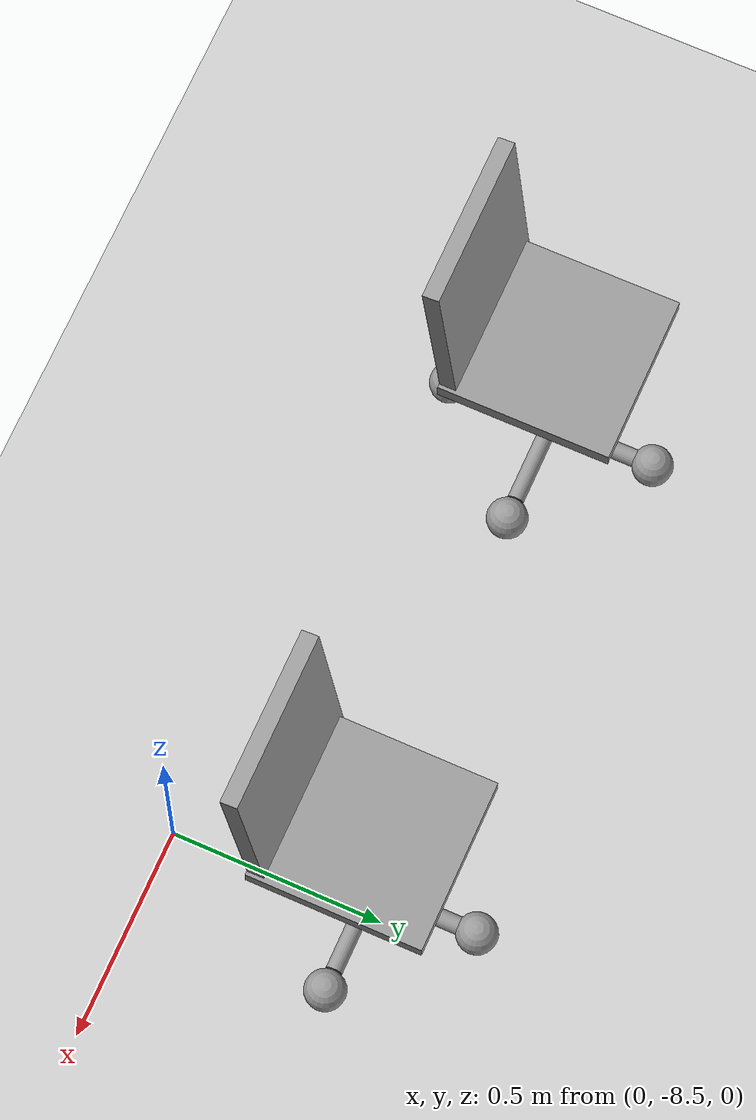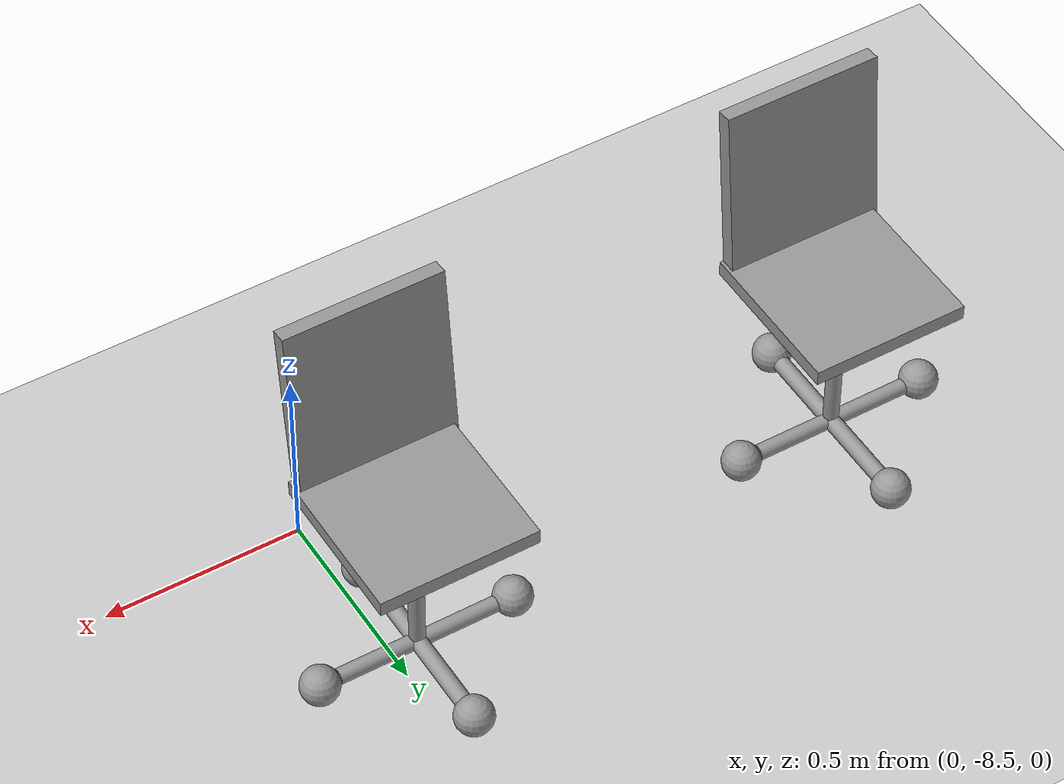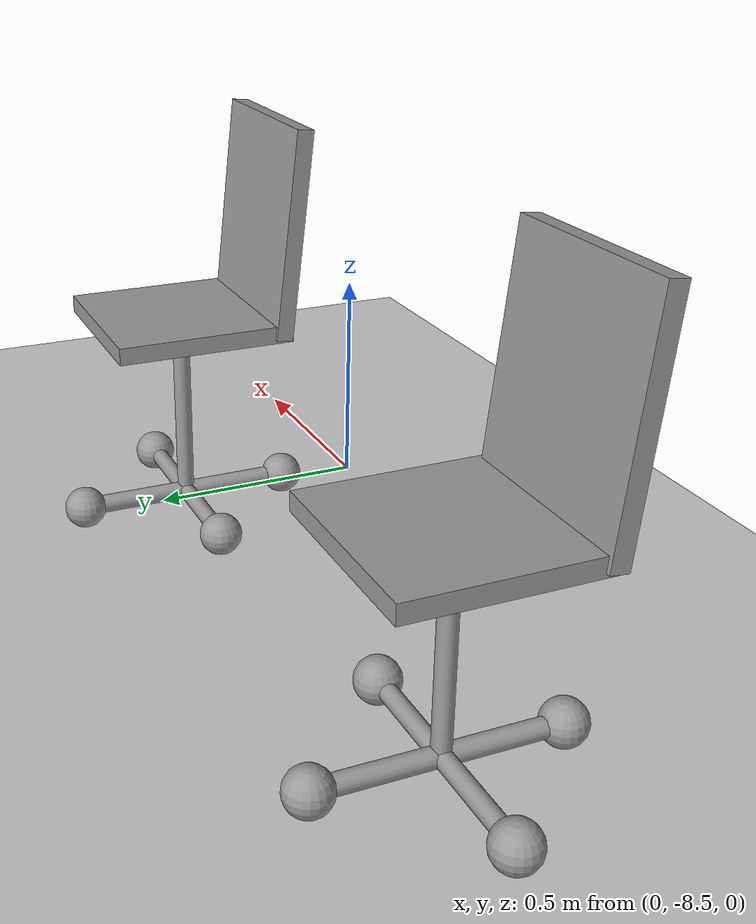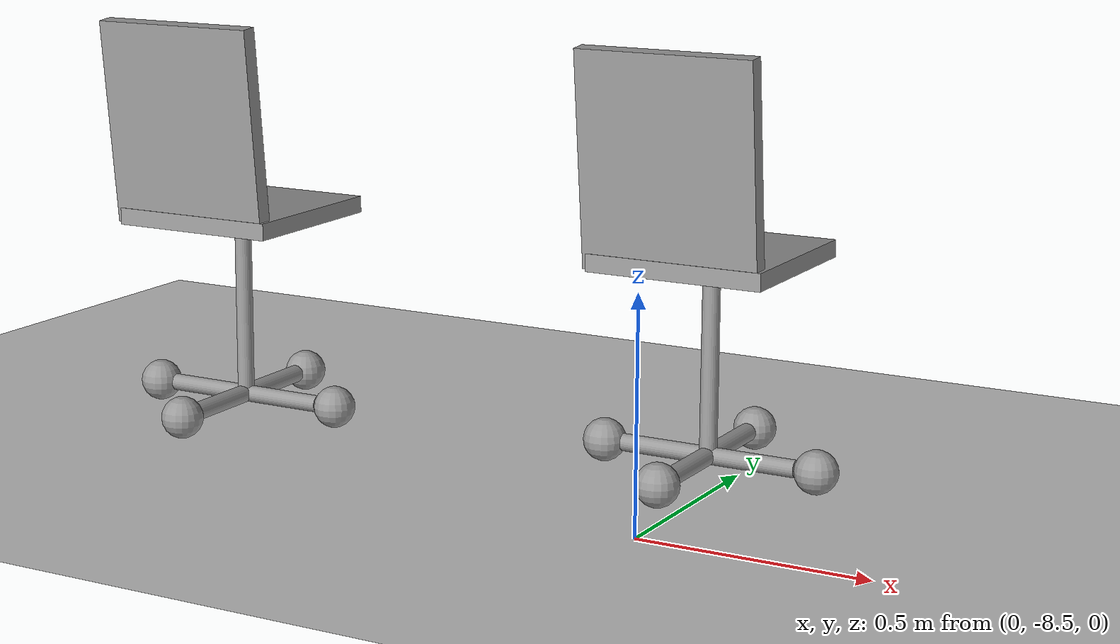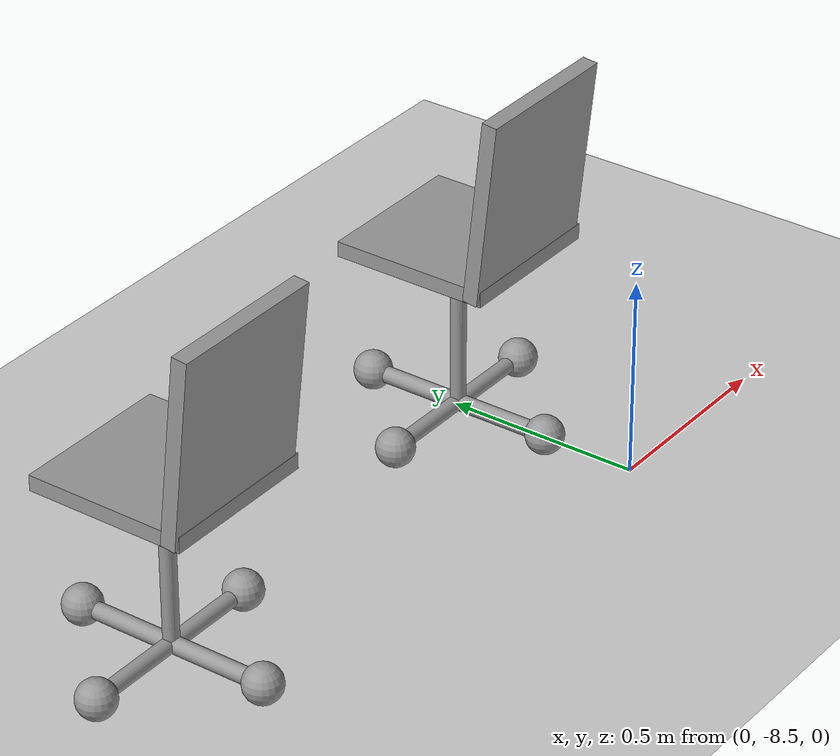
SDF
<sdf version="1.6">
 <world name="default">
  <model name="ground_plane">
   <static>1</static>
   <link name="link">
    <collision name="collision">
     <geometry><plane><normal>0 0 1</normal><size>100 100</size></plane></geometry>
     <surface><friction><ode><mu>100</mu><mu2>50</mu2></ode></friction></surface>
    </collision>
    <visual name="visual">
     <cast_shadows>0</cast_shadows>
     <geometry><plane><normal>0 0 1</normal><size>100 100</size></plane></geometry>
     <material>
      <script><uri>file://media/materials/scripts/gazebo.material</uri><name>Gazebo/Grey</name></script>
     </material>
    </visual>
   </link>
  </model>
  <model name="Sedia_4">
   <link name="link">
    <inertial>
     <mass>1</mass>
     <inertia><ixx>0.1</ixx><ixy>0</ixy><ixz>0</ixz><iyy>0.1</iyy><iyz>0</iyz><izz>0.1</izz></inertia>
     <pose>0 -0.05 0 0 -0 0</pose>
    </inertial>
    <pose>0 -0.05 0.04 0 -0 0</pose>
    <visual name="visual">
     <geometry><sphere><radius>0.0479725</radius></sphere></geometry>
     <material>
      <script><name>Gazebo/Grey</name><uri>file://media/materials/scripts/gazebo.material</uri></script>
      <shader type="vertex"><normal_map>__default__</normal_map></shader>
      <ambient>0.3 0.3 0.3 1</ambient>
      <diffuse>0.7 0.7 0.7 1</diffuse>
      <specular>0.01 0.01 0.01 1</specular>
      <emissive>0 0 0 1</emissive>
     </material>
    </visual>
    <collision name="collision">
     <geometry><sphere><radius>0.047973</radius></sphere></geometry>
     <surface>
      <friction>
       <ode><mu>1</mu><mu2>1</mu2><fdir1>0 0 0</fdir1><slip1>0</slip1><slip2>0</slip2></ode>
       <torsional>
        <coefficient>1</coefficient>
        <patch_radius>0</patch_radius>
        <surface_radius>0</surface_radius>
        <use_patch_radius>1</use_patch_radius>
        <ode><slip>0</slip></ode>
       </torsional>
      </friction>
      <bounce><restitution_coefficient>0</restitution_coefficient><threshold>1e+06</threshold></bounce>
      <contact>
       <collide_without_contact>0</collide_without_contact>
       <collide_without_contact_bitmask>1</collide_without_contact_bitmask>
       <collide_bitmask>1</collide_bitmask>
       <ode>
        <soft_cfm>0</soft_cfm>
        <soft_erp>0.2</soft_erp>
        <kp>1e+13</kp>
        <kd>1</kd>
        <max_vel>0.01</max_vel>
        <min_depth>0</min_depth>
       </ode>
       <bullet>
        <split_impulse>1</split_impulse>
        <split_impulse_penetration_threshold>-0.01</split_impulse_penetration_threshold>
        <soft_cfm>0</soft_cfm>
        <soft_erp>0.2</soft_erp>
        <kp>1e+13</kp>
        <kd>1</kd>
       </bullet>
      </contact>
     </surface>
    </collision>
   </link>
   <link name="link_0">
    <inertial>
     <mass>0.000595181</mass>
     <inertia>
      <ixx>8.34662e-06</ixx>
      <ixy>0</ixy>
      <ixz>0</ixz>
      <iyy>8.34662e-06</iyy>
      <iyz>0</iyz>
      <izz>1.11586e-07</izz>
     </inertia>
    </inertial>
    <pose>-0 0.2 0.2494 0 -0 0</pose>
    <visual name="visual">
     <geometry><cylinder><radius>0.0193636</radius><length>0.408851</length></cylinder></geometry>
     <material>
      <lighting>1</lighting>
      <script><uri>file://media/materials/scripts/gazebo.material</uri><name>Gazebo/Grey</name></script>
      <shader type="vertex"><normal_map>__default__</normal_map></shader>
      <ambient>0.3 0.3 0.3 1</ambient>
      <diffuse>0.7 0.7 0.7 1</diffuse>
      <specular>0.01 0.01 0.01 1</specular>
      <emissive>0 0 0 1</emissive>
     </material>
    </visual>
    <collision name="collision">
     <geometry><cylinder><radius>0.019364</radius><length>0.408851</length></cylinder></geometry>
     <surface>
      <friction>
       <ode><mu>1</mu><mu2>1</mu2><fdir1>0 0 0</fdir1><slip1>0</slip1><slip2>0</slip2></ode>
       <torsional>
        <coefficient>1</coefficient>
        <patch_radius>0</patch_radius>
        <surface_radius>0</surface_radius>
        <use_patch_radius>1</use_patch_radius>
        <ode><slip>0</slip></ode>
       </torsional>
      </friction>
      <bounce><restitution_coefficient>0</restitution_coefficient><threshold>1e+06</threshold></bounce>
      <contact>
       <collide_without_contact>0</collide_without_contact>
       <collide_without_contact_bitmask>1</collide_without_contact_bitmask>
       <collide_bitmask>1</collide_bitmask>
       <ode>
        <soft_cfm>0</soft_cfm>
        <soft_erp>0.2</soft_erp>
        <kp>1e+13</kp>
        <kd>1</kd>
        <max_vel>0.01</max_vel>
        <min_depth>0</min_depth>
       </ode>
       <bullet>
        <split_impulse>1</split_impulse>
        <split_impulse_penetration_threshold>-0.01</split_impulse_penetration_threshold>
        <soft_cfm>0</soft_cfm>
        <soft_erp>0.2</soft_erp>
        <kp>1e+13</kp>
        <kd>1</kd>
       </bullet>
      </contact>
     </surface>
    </collision>
   </link>
   <link name="link_0_clone">
    <inertial>
     <mass>0.000698061</mass>
     <inertia>
      <ixx>1.02332e-05</ixx>
      <ixy>0</ixy>
      <ixz>0</ixz>
      <iyy>1.02332e-05</iyy>
      <iyz>0</iyz>
      <izz>1.50251e-07</izz>
     </inertia>
    </inertial>
    <pose>0 0.2 0.04 -1.571 -0 0</pose>
    <visual name="visual">
     <geometry><cylinder><radius>0.0207471</radius><length>0.417878</length></cylinder></geometry>
     <material>
      <lighting>1</lighting>
      <script><uri>file://media/materials/scripts/gazebo.material</uri><name>Gazebo/Grey</name></script>
      <shader type="vertex"><normal_map>__default__</normal_map></shader>
      <ambient>0.3 0.3 0.3 1</ambient>
      <diffuse>0.7 0.7 0.7 1</diffuse>
      <specular>0.01 0.01 0.01 1</specular>
      <emissive>0 0 0 1</emissive>
     </material>
    </visual>
    <collision name="collision">
     <geometry><cylinder><radius>0.020748</radius><length>0.417878</length></cylinder></geometry>
     <surface>
      <friction>
       <ode><mu>1</mu><mu2>1</mu2><fdir1>0 0 0</fdir1><slip1>0</slip1><slip2>0</slip2></ode>
       <torsional>
        <coefficient>1</coefficient>
        <patch_radius>0</patch_radius>
        <surface_radius>0</surface_radius>
        <use_patch_radius>1</use_patch_radius>
        <ode><slip>0</slip></ode>
       </torsional>
      </friction>
      <bounce><restitution_coefficient>0</restitution_coefficient><threshold>1e+06</threshold></bounce>
      <contact>
       <collide_without_contact>0</collide_without_contact>
       <collide_without_contact_bitmask>1</collide_without_contact_bitmask>
       <collide_bitmask>1</collide_bitmask>
       <ode>
        <soft_cfm>0</soft_cfm>
        <soft_erp>0.2</soft_erp>
        <kp>1e+13</kp>
        <kd>1</kd>
        <max_vel>0.01</max_vel>
        <min_depth>0</min_depth>
       </ode>
       <bullet>
        <split_impulse>1</split_impulse>
        <split_impulse_penetration_threshold>-0.01</split_impulse_penetration_threshold>
        <soft_cfm>0</soft_cfm>
        <soft_erp>0.2</soft_erp>
        <kp>1e+13</kp>
        <kd>1</kd>
       </bullet>
      </contact>
     </surface>
    </collision>
   </link>
   <link name="link_0_clone_0">
    <inertial>
     <mass>0.00059327</mass>
     <inertia>
      <ixx>8.26633e-06</ixx>
      <ixy>0</ixy>
      <ixz>0</ixz>
      <iyy>8.26633e-06</iyy>
      <iyz>0</iyz>
      <izz>1.11228e-07</izz>
     </inertia>
    </inertial>
    <pose>0 0.2 0.04 0 -1.57059 0</pose>
    <visual name="visual">
     <geometry><cylinder><radius>0.0193636</radius><length>0.407525</length></cylinder></geometry>
     <material>
      <lighting>1</lighting>
      <script><uri>file://media/materials/scripts/gazebo.material</uri><name>Gazebo/Grey</name></script>
      <shader type="vertex"><normal_map>__default__</normal_map></shader>
      <ambient>0.3 0.3 0.3 1</ambient>
      <diffuse>0.7 0.7 0.7 1</diffuse>
      <specular>0.01 0.01 0.01 1</specular>
      <emissive>0 0 0 1</emissive>
     </material>
    </visual>
    <collision name="collision">
     <geometry><cylinder><radius>0.019364</radius><length>0.407525</length></cylinder></geometry>
     <surface>
      <friction>
       <ode><mu>1</mu><mu2>1</mu2><fdir1>0 0 0</fdir1><slip1>0</slip1><slip2>0</slip2></ode>
       <torsional>
        <coefficient>1</coefficient>
        <patch_radius>0</patch_radius>
        <surface_radius>0</surface_radius>
        <use_patch_radius>1</use_patch_radius>
        <ode><slip>0</slip></ode>
       </torsional>
      </friction>
      <bounce><restitution_coefficient>0</restitution_coefficient><threshold>1e+06</threshold></bounce>
      <contact>
       <collide_without_contact>0</collide_without_contact>
       <collide_without_contact_bitmask>1</collide_without_contact_bitmask>
       <collide_bitmask>1</collide_bitmask>
       <ode>
        <soft_cfm>0</soft_cfm>
        <soft_erp>0.2</soft_erp>
        <kp>1e+13</kp>
        <kd>1</kd>
        <max_vel>0.01</max_vel>
        <min_depth>0</min_depth>
       </ode>
       <bullet>
        <split_impulse>1</split_impulse>
        <split_impulse_penetration_threshold>-0.01</split_impulse_penetration_threshold>
        <soft_cfm>0</soft_cfm>
        <soft_erp>0.2</soft_erp>
        <kp>1e+13</kp>
        <kd>1</kd>
       </bullet>
      </contact>
     </surface>
    </collision>
   </link>
   <link name="link_1">
    <inertial>
     <mass>0.00616304</mass>
     <inertia>
      <ixx>8.379e-05</ixx>
      <ixy>0</ixy>
      <ixz>0</ixz>
      <iyy>8.148e-05</iyy>
      <iyz>0</iyz>
      <izz>0.00016374</izz>
     </inertia>
    </inertial>
    <pose>-0 0.2 0.48 0 -0 0</pose>
    <visual name="visual">
     <geometry><box><size>0.396445 0.402068 0.038566</size></box></geometry>
     <material>
      <lighting>1</lighting>
      <script><uri>file://media/materials/scripts/gazebo.material</uri><name>Gazebo/Grey</name></script>
      <shader type="vertex"><normal_map>__default__</normal_map></shader>
      <ambient>0.3 0.3 0.3 1</ambient>
      <diffuse>0.7 0.7 0.7 1</diffuse>
      <specular>0.01 0.01 0.01 1</specular>
      <emissive>0 0 0 1</emissive>
     </material>
    </visual>
    <collision name="collision">
     <geometry><box><size>0.396445 0.402068 0.038566</size></box></geometry>
     <surface>
      <friction>
       <ode><mu>1</mu><mu2>1</mu2><fdir1>0 0 0</fdir1><slip1>0</slip1><slip2>0</slip2></ode>
       <torsional>
        <coefficient>1</coefficient>
        <patch_radius>0</patch_radius>
        <surface_radius>0</surface_radius>
        <use_patch_radius>1</use_patch_radius>
        <ode><slip>0</slip></ode>
       </torsional>
      </friction>
      <bounce><restitution_coefficient>0</restitution_coefficient><threshold>1e+06</threshold></bounce>
      <contact>
       <collide_without_contact>0</collide_without_contact>
       <collide_without_contact_bitmask>1</collide_without_contact_bitmask>
       <collide_bitmask>1</collide_bitmask>
       <ode>
        <soft_cfm>0</soft_cfm>
        <soft_erp>0.2</soft_erp>
        <kp>1e+13</kp>
        <kd>1</kd>
        <max_vel>0.01</max_vel>
        <min_depth>0</min_depth>
       </ode>
       <bullet>
        <split_impulse>1</split_impulse>
        <split_impulse_penetration_threshold>-0.01</split_impulse_penetration_threshold>
        <soft_cfm>0</soft_cfm>
        <soft_erp>0.2</soft_erp>
        <kp>1e+13</kp>
        <kd>1</kd>
       </bullet>
      </contact>
     </surface>
    </collision>
   </link>
   <link name="link_1_clone">
    <inertial>
     <mass>0.0072018</mass>
     <inertia>
      <ixx>0.000133376</ixx>
      <ixy>0</ixy>
      <ixz>0</ixz>
      <iyy>9.52174e-05</iyy>
      <iyz>0</iyz>
      <izz>0.000226808</izz>
     </inertia>
    </inertial>
    <pose>-0.008803 -0.002064 0.701044 1.67698 -0 0</pose>
    <visual name="visual">
     <geometry><box><size>0.396445 0.46984 0.038566</size></box></geometry>
     <material>
      <lighting>1</lighting>
      <script><uri>file://media/materials/scripts/gazebo.material</uri><name>Gazebo/Grey</name></script>
      <shader type="vertex"><normal_map>__default__</normal_map></shader>
      <ambient>0.3 0.3 0.3 1</ambient>
      <diffuse>0.7 0.7 0.7 1</diffuse>
      <specular>0.01 0.01 0.01 1</specular>
      <emissive>0 0 0 1</emissive>
     </material>
    </visual>
    <collision name="collision">
     <geometry><box><size>0.396445 0.46984 0.038566</size></box></geometry>
     <surface>
      <friction>
       <ode><mu>1</mu><mu2>1</mu2><fdir1>0 0 0</fdir1><slip1>0</slip1><slip2>0</slip2></ode>
       <torsional>
        <coefficient>1</coefficient>
        <patch_radius>0</patch_radius>
        <surface_radius>0</surface_radius>
        <use_patch_radius>1</use_patch_radius>
        <ode><slip>0</slip></ode>
       </torsional>
      </friction>
      <bounce><restitution_coefficient>0</restitution_coefficient><threshold>1e+06</threshold></bounce>
      <contact>
       <collide_without_contact>0</collide_without_contact>
       <collide_without_contact_bitmask>1</collide_without_contact_bitmask>
       <collide_bitmask>1</collide_bitmask>
       <ode>
        <soft_cfm>0</soft_cfm>
        <soft_erp>0.2</soft_erp>
        <kp>1e+13</kp>
        <kd>1</kd>
        <max_vel>0.01</max_vel>
        <min_depth>0</min_depth>
       </ode>
       <bullet>
        <split_impulse>1</split_impulse>
        <split_impulse_penetration_threshold>-0.01</split_impulse_penetration_threshold>
        <soft_cfm>0</soft_cfm>
        <soft_erp>0.2</soft_erp>
        <kp>1e+13</kp>
        <kd>1</kd>
       </bullet>
      </contact>
     </surface>
    </collision>
   </link>
   <link name="link_clone">
    <inertial>
     <mass>1</mass>
     <inertia><ixx>0.1</ixx><ixy>0</ixy><ixz>0</ixz><iyy>0.1</iyy><iyz>0</iyz><izz>0.1</izz></inertia>
     <pose>0 0 0.04 0 -0 0</pose>
    </inertial>
    <pose>0.25 0.2 0.04 0 -0 0</pose>
    <visual name="visual">
     <geometry><sphere><radius>0.0479725</radius></sphere></geometry>
     <material>
      <script><name>Gazebo/Grey</name><uri>file://media/materials/scripts/gazebo.material</uri></script>
      <shader type="vertex"><normal_map>__default__</normal_map></shader>
      <ambient>0.3 0.3 0.3 1</ambient>
      <diffuse>0.7 0.7 0.7 1</diffuse>
      <specular>0.01 0.01 0.01 1</specular>
      <emissive>0 0 0 1</emissive>
     </material>
    </visual>
    <collision name="collision">
     <geometry><sphere><radius>0.047973</radius></sphere></geometry>
     <surface>
      <friction>
       <ode><mu>1</mu><mu2>1</mu2><fdir1>0 0 0</fdir1><slip1>0</slip1><slip2>0</slip2></ode>
       <torsional>
        <coefficient>1</coefficient>
        <patch_radius>0</patch_radius>
        <surface_radius>0</surface_radius>
        <use_patch_radius>1</use_patch_radius>
        <ode><slip>0</slip></ode>
       </torsional>
      </friction>
      <bounce><restitution_coefficient>0</restitution_coefficient><threshold>1e+06</threshold></bounce>
      <contact>
       <collide_without_contact>0</collide_without_contact>
       <collide_without_contact_bitmask>1</collide_without_contact_bitmask>
       <collide_bitmask>1</collide_bitmask>
       <ode>
        <soft_cfm>0</soft_cfm>
        <soft_erp>0.2</soft_erp>
        <kp>1e+13</kp>
        <kd>1</kd>
        <max_vel>0.01</max_vel>
        <min_depth>0</min_depth>
       </ode>
       <bullet>
        <split_impulse>1</split_impulse>
        <split_impulse_penetration_threshold>-0.01</split_impulse_penetration_threshold>
        <soft_cfm>0</soft_cfm>
        <soft_erp>0.2</soft_erp>
        <kp>1e+13</kp>
        <kd>1</kd>
       </bullet>
      </contact>
     </surface>
    </collision>
   </link>
   <link name="link_clone_0">
    <inertial>
     <mass>1</mass>
     <inertia><ixx>0.1</ixx><ixy>0</ixy><ixz>0</ixz><iyy>0.1</iyy><iyz>0</iyz><izz>0.1</izz></inertia>
    </inertial>
    <pose>-0 0.45 0.04 0 -0 0</pose>
    <visual name="visual">
     <geometry><sphere><radius>0.0479725</radius></sphere></geometry>
     <material>
      <script><name>Gazebo/Grey</name><uri>file://media/materials/scripts/gazebo.material</uri></script>
      <shader type="vertex"><normal_map>__default__</normal_map></shader>
      <ambient>0.3 0.3 0.3 1</ambient>
      <diffuse>0.7 0.7 0.7 1</diffuse>
      <specular>0.01 0.01 0.01 1</specular>
      <emissive>0 0 0 1</emissive>
     </material>
    </visual>
    <collision name="collision">
     <geometry><sphere><radius>0.047973</radius></sphere></geometry>
     <surface>
      <friction>
       <ode><mu>1</mu><mu2>1</mu2><fdir1>0 0 0</fdir1><slip1>0</slip1><slip2>0</slip2></ode>
       <torsional>
        <coefficient>1</coefficient>
        <patch_radius>0</patch_radius>
        <surface_radius>0</surface_radius>
        <use_patch_radius>1</use_patch_radius>
        <ode><slip>0</slip></ode>
       </torsional>
      </friction>
      <bounce><restitution_coefficient>0</restitution_coefficient><threshold>1e+06</threshold></bounce>
      <contact>
       <collide_without_contact>0</collide_without_contact>
       <collide_without_contact_bitmask>1</collide_without_contact_bitmask>
       <collide_bitmask>1</collide_bitmask>
       <ode>
        <soft_cfm>0</soft_cfm>
        <soft_erp>0.2</soft_erp>
        <kp>1e+13</kp>
        <kd>1</kd>
        <max_vel>0.01</max_vel>
        <min_depth>0</min_depth>
       </ode>
       <bullet>
        <split_impulse>1</split_impulse>
        <split_impulse_penetration_threshold>-0.01</split_impulse_penetration_threshold>
        <soft_cfm>0</soft_cfm>
        <soft_erp>0.2</soft_erp>
        <kp>1e+13</kp>
        <kd>1</kd>
       </bullet>
      </contact>
     </surface>
    </collision>
   </link>
   <link name="link_clone_1">
    <inertial>
     <mass>1</mass>
     <inertia><ixx>0.1</ixx><ixy>0</ixy><ixz>0</ixz><iyy>0.1</iyy><iyz>0</iyz><izz>0.1</izz></inertia>
    </inertial>
    <pose>-0.25 0.2 0.04 0 -0 0</pose>
    <visual name="visual">
     <geometry><sphere><radius>0.0479725</radius></sphere></geometry>
     <material>
      <script><name>Gazebo/Grey</name><uri>file://media/materials/scripts/gazebo.material</uri></script>
      <shader type="vertex"><normal_map>__default__</normal_map></shader>
      <ambient>0.3 0.3 0.3 1</ambient>
      <diffuse>0.7 0.7 0.7 1</diffuse>
      <specular>0.01 0.01 0.01 1</specular>
      <emissive>0 0 0 1</emissive>
     </material>
    </visual>
    <collision name="collision">
     <geometry><sphere><radius>0.047973</radius></sphere></geometry>
     <surface>
      <friction>
       <ode><mu>1</mu><mu2>1</mu2><fdir1>0 0 0</fdir1><slip1>0</slip1><slip2>0</slip2></ode>
       <torsional>
        <coefficient>1</coefficient>
        <patch_radius>0</patch_radius>
        <surface_radius>0</surface_radius>
        <use_patch_radius>1</use_patch_radius>
        <ode><slip>0</slip></ode>
       </torsional>
      </friction>
      <bounce><restitution_coefficient>0</restitution_coefficient><threshold>1e+06</threshold></bounce>
      <contact>
       <collide_without_contact>0</collide_without_contact>
       <collide_without_contact_bitmask>1</collide_without_contact_bitmask>
       <collide_bitmask>1</collide_bitmask>
       <ode>
        <soft_cfm>0</soft_cfm>
        <soft_erp>0.2</soft_erp>
        <kp>1e+13</kp>
        <kd>1</kd>
        <max_vel>0.01</max_vel>
        <min_depth>0</min_depth>
       </ode>
       <bullet>
        <split_impulse>1</split_impulse>
        <split_impulse_penetration_threshold>-0.01</split_impulse_penetration_threshold>
        <soft_cfm>0</soft_cfm>
        <soft_erp>0.2</soft_erp>
        <kp>1e+13</kp>
        <kd>1</kd>
       </bullet>
      </contact>
     </surface>
    </collision>
   </link>
   <joint name="link_0_clone_0_JOINT_1" type="fixed">
    <parent>link_0_clone_0</parent>
    <child>link_clone</child>
    <physics>
     <ode><limit><cfm>0</cfm><erp>0.2</erp></limit><suspension><cfm>0</cfm><erp>0.2</erp></suspension></ode>
    </physics>
   </joint>
   <joint name="link_0_clone_0_JOINT_2" type="fixed">
    <parent>link_0_clone_0</parent>
    <child>link_clone_1</child>
    <physics>
     <ode><limit><cfm>0</cfm><erp>0.2</erp></limit><suspension><cfm>0</cfm><erp>0.2</erp></suspension></ode>
    </physics>
   </joint>
   <joint name="link_0_clone_JOINT_3" type="fixed">
    <parent>link_0_clone</parent>
    <child>link_clone_0</child>
    <physics>
     <ode><limit><cfm>0</cfm><erp>0.2</erp></limit><suspension><cfm>0</cfm><erp>0.2</erp></suspension></ode>
    </physics>
   </joint>
   <joint name="link_0_clone_JOINT_4" type="fixed">
    <parent>link_0_clone</parent>
    <child>link</child>
    <physics>
     <ode><limit><cfm>0</cfm><erp>0.2</erp></limit><suspension><cfm>0</cfm><erp>0.2</erp></suspension></ode>
    </physics>
   </joint>
   <joint name="link_1_JOINT_0" type="fixed">
    <parent>link_1</parent>
    <child>link_1_clone</child>
    <physics>
     <ode><limit><cfm>0</cfm><erp>0.2</erp></limit><suspension><cfm>0</cfm><erp>0.2</erp></suspension></ode>
    </physics>
   </joint>
   <joint name="link_1_JOINT_4" type="fixed">
    <parent>link_1</parent>
    <child>link_0</child>
    <physics>
     <ode><limit><cfm>0</cfm><erp>0.2</erp></limit><suspension><cfm>0</cfm><erp>0.2</erp></suspension></ode>
    </physics>
   </joint>
   <joint name="link_JOINT_3" type="fixed">
    <parent>link</parent>
    <child>link_0</child>
    <physics>
     <ode><limit><cfm>0</cfm><erp>0.2</erp></limit><suspension><cfm>0</cfm><erp>0.2</erp></suspension></ode>
    </physics>
   </joint>
   <joint name="link_clone_0_JOINT_0" type="fixed">
    <parent>link_clone_0</parent>
    <child>link_0_LINK_FRAME_VISUAL___Y_AXIS</child>
    <physics>
     <ode><limit><cfm>0</cfm><erp>0.2</erp></limit><suspension><cfm>0</cfm><erp>0.2</erp></suspension></ode>
    </physics>
   </joint>
   <joint name="link_clone_1_JOINT_2" type="fixed">
    <parent>link_clone_1</parent>
    <child>link_0</child>
    <physics>
     <ode><limit><cfm>0</cfm><erp>0.2</erp></limit><suspension><cfm>0</cfm><erp>0.2</erp></suspension></ode>
    </physics>
   </joint>
   <joint name="link_clone_JOINT_1" type="fixed">
    <parent>link_clone</parent>
    <child>link_0</child>
    <physics>
     <ode><limit><cfm>0</cfm><erp>0.2</erp></limit><suspension><cfm>0</cfm><erp>0.2</erp></suspension></ode>
    </physics>
   </joint>
   <static>0</static>
   <pose>-1.21643 -8.31745 0.007985 0.000343 5e-06 -1e-06</pose>
  </model>
  <model name="Sedia_5">
   <link name="link">
    <inertial>
     <mass>1</mass>
     <inertia><ixx>0.1</ixx><ixy>0</ixy><ixz>0</ixz><iyy>0.1</iyy><iyz>0</iyz><izz>0.1</izz></inertia>
     <pose>0 -0.05 0 0 -0 0</pose>
    </inertial>
    <pose>0 -0.05 0.04 0 -0 0</pose>
    <visual name="visual">
     <geometry><sphere><radius>0.0479725</radius></sphere></geometry>
     <material>
      <script><name>Gazebo/Grey</name><uri>file://media/materials/scripts/gazebo.material</uri></script>
      <shader type="vertex"><normal_map>__default__</normal_map></shader>
      <ambient>0.3 0.3 0.3 1</ambient>
      <diffuse>0.7 0.7 0.7 1</diffuse>
      <specular>0.01 0.01 0.01 1</specular>
      <emissive>0 0 0 1</emissive>
     </material>
    </visual>
    <collision name="collision">
     <geometry><sphere><radius>0.047973</radius></sphere></geometry>
     <surface>
      <friction>
       <ode><mu>1</mu><mu2>1</mu2><fdir1>0 0 0</fdir1><slip1>0</slip1><slip2>0</slip2></ode>
       <torsional>
        <coefficient>1</coefficient>
        <patch_radius>0</patch_radius>
        <surface_radius>0</surface_radius>
        <use_patch_radius>1</use_patch_radius>
        <ode><slip>0</slip></ode>
       </torsional>
      </friction>
      <bounce><restitution_coefficient>0</restitution_coefficient><threshold>1e+06</threshold></bounce>
      <contact>
       <collide_without_contact>0</collide_without_contact>
       <collide_without_contact_bitmask>1</collide_without_contact_bitmask>
       <collide_bitmask>1</collide_bitmask>
       <ode>
        <soft_cfm>0</soft_cfm>
        <soft_erp>0.2</soft_erp>
        <kp>1e+13</kp>
        <kd>1</kd>
        <max_vel>0.01</max_vel>
        <min_depth>0</min_depth>
       </ode>
       <bullet>
        <split_impulse>1</split_impulse>
        <split_impulse_penetration_threshold>-0.01</split_impulse_penetration_threshold>
        <soft_cfm>0</soft_cfm>
        <soft_erp>0.2</soft_erp>
        <kp>1e+13</kp>
        <kd>1</kd>
       </bullet>
      </contact>
     </surface>
    </collision>
   </link>
   <link name="link_0">
    <inertial>
     <mass>0.000595181</mass>
     <inertia>
      <ixx>8.34662e-06</ixx>
      <ixy>0</ixy>
      <ixz>0</ixz>
      <iyy>8.34662e-06</iyy>
      <iyz>0</iyz>
      <izz>1.11586e-07</izz>
     </inertia>
    </inertial>
    <pose>-0 0.2 0.2494 0 -0 0</pose>
    <visual name="visual">
     <geometry><cylinder><radius>0.0193636</radius><length>0.408851</length></cylinder></geometry>
     <material>
      <lighting>1</lighting>
      <script><uri>file://media/materials/scripts/gazebo.material</uri><name>Gazebo/Grey</name></script>
      <shader type="vertex"><normal_map>__default__</normal_map></shader>
      <ambient>0.3 0.3 0.3 1</ambient>
      <diffuse>0.7 0.7 0.7 1</diffuse>
      <specular>0.01 0.01 0.01 1</specular>
      <emissive>0 0 0 1</emissive>
     </material>
    </visual>
    <collision name="collision">
     <geometry><cylinder><radius>0.019364</radius><length>0.408851</length></cylinder></geometry>
     <surface>
      <friction>
       <ode><mu>1</mu><mu2>1</mu2><fdir1>0 0 0</fdir1><slip1>0</slip1><slip2>0</slip2></ode>
       <torsional>
        <coefficient>1</coefficient>
        <patch_radius>0</patch_radius>
        <surface_radius>0</surface_radius>
        <use_patch_radius>1</use_patch_radius>
        <ode><slip>0</slip></ode>
       </torsional>
      </friction>
      <bounce><restitution_coefficient>0</restitution_coefficient><threshold>1e+06</threshold></bounce>
      <contact>
       <collide_without_contact>0</collide_without_contact>
       <collide_without_contact_bitmask>1</collide_without_contact_bitmask>
       <collide_bitmask>1</collide_bitmask>
       <ode>
        <soft_cfm>0</soft_cfm>
        <soft_erp>0.2</soft_erp>
        <kp>1e+13</kp>
        <kd>1</kd>
        <max_vel>0.01</max_vel>
        <min_depth>0</min_depth>
       </ode>
       <bullet>
        <split_impulse>1</split_impulse>
        <split_impulse_penetration_threshold>-0.01</split_impulse_penetration_threshold>
        <soft_cfm>0</soft_cfm>
        <soft_erp>0.2</soft_erp>
        <kp>1e+13</kp>
        <kd>1</kd>
       </bullet>
      </contact>
     </surface>
    </collision>
   </link>
   <link name="link_0_clone">
    <inertial>
     <mass>0.000698061</mass>
     <inertia>
      <ixx>1.02332e-05</ixx>
      <ixy>0</ixy>
      <ixz>0</ixz>
      <iyy>1.02332e-05</iyy>
      <iyz>0</iyz>
      <izz>1.50251e-07</izz>
     </inertia>
    </inertial>
    <pose>0 0.2 0.04 -1.571 -0 0</pose>
    <visual name="visual">
     <geometry><cylinder><radius>0.0207471</radius><length>0.417878</length></cylinder></geometry>
     <material>
      <lighting>1</lighting>
      <script><uri>file://media/materials/scripts/gazebo.material</uri><name>Gazebo/Grey</name></script>
      <shader type="vertex"><normal_map>__default__</normal_map></shader>
      <ambient>0.3 0.3 0.3 1</ambient>
      <diffuse>0.7 0.7 0.7 1</diffuse>
      <specular>0.01 0.01 0.01 1</specular>
      <emissive>0 0 0 1</emissive>
     </material>
    </visual>
    <collision name="collision">
     <geometry><cylinder><radius>0.020748</radius><length>0.417878</length></cylinder></geometry>
     <surface>
      <friction>
       <ode><mu>1</mu><mu2>1</mu2><fdir1>0 0 0</fdir1><slip1>0</slip1><slip2>0</slip2></ode>
       <torsional>
        <coefficient>1</coefficient>
        <patch_radius>0</patch_radius>
        <surface_radius>0</surface_radius>
        <use_patch_radius>1</use_patch_radius>
        <ode><slip>0</slip></ode>
       </torsional>
      </friction>
      <bounce><restitution_coefficient>0</restitution_coefficient><threshold>1e+06</threshold></bounce>
      <contact>
       <collide_without_contact>0</collide_without_contact>
       <collide_without_contact_bitmask>1</collide_without_contact_bitmask>
       <collide_bitmask>1</collide_bitmask>
       <ode>
        <soft_cfm>0</soft_cfm>
        <soft_erp>0.2</soft_erp>
        <kp>1e+13</kp>
        <kd>1</kd>
        <max_vel>0.01</max_vel>
        <min_depth>0</min_depth>
       </ode>
       <bullet>
        <split_impulse>1</split_impulse>
        <split_impulse_penetration_threshold>-0.01</split_impulse_penetration_threshold>
        <soft_cfm>0</soft_cfm>
        <soft_erp>0.2</soft_erp>
        <kp>1e+13</kp>
        <kd>1</kd>
       </bullet>
      </contact>
     </surface>
    </collision>
   </link>
   <link name="link_0_clone_0">
    <inertial>
     <mass>0.00059327</mass>
     <inertia>
      <ixx>8.26633e-06</ixx>
      <ixy>0</ixy>
      <ixz>0</ixz>
      <iyy>8.26633e-06</iyy>
      <iyz>0</iyz>
      <izz>1.11228e-07</izz>
     </inertia>
    </inertial>
    <pose>0 0.2 0.04 0 -1.57059 0</pose>
    <visual name="visual">
     <geometry><cylinder><radius>0.0193636</radius><length>0.407525</length></cylinder></geometry>
     <material>
      <lighting>1</lighting>
      <script><uri>file://media/materials/scripts/gazebo.material</uri><name>Gazebo/Grey</name></script>
      <shader type="vertex"><normal_map>__default__</normal_map></shader>
      <ambient>0.3 0.3 0.3 1</ambient>
      <diffuse>0.7 0.7 0.7 1</diffuse>
      <specular>0.01 0.01 0.01 1</specular>
      <emissive>0 0 0 1</emissive>
     </material>
    </visual>
    <collision name="collision">
     <geometry><cylinder><radius>0.019364</radius><length>0.407525</length></cylinder></geometry>
     <surface>
      <friction>
       <ode><mu>1</mu><mu2>1</mu2><fdir1>0 0 0</fdir1><slip1>0</slip1><slip2>0</slip2></ode>
       <torsional>
        <coefficient>1</coefficient>
        <patch_radius>0</patch_radius>
        <surface_radius>0</surface_radius>
        <use_patch_radius>1</use_patch_radius>
        <ode><slip>0</slip></ode>
       </torsional>
      </friction>
      <bounce><restitution_coefficient>0</restitution_coefficient><threshold>1e+06</threshold></bounce>
      <contact>
       <collide_without_contact>0</collide_without_contact>
       <collide_without_contact_bitmask>1</collide_without_contact_bitmask>
       <collide_bitmask>1</collide_bitmask>
       <ode>
        <soft_cfm>0</soft_cfm>
        <soft_erp>0.2</soft_erp>
        <kp>1e+13</kp>
        <kd>1</kd>
        <max_vel>0.01</max_vel>
        <min_depth>0</min_depth>
       </ode>
       <bullet>
        <split_impulse>1</split_impulse>
        <split_impulse_penetration_threshold>-0.01</split_impulse_penetration_threshold>
        <soft_cfm>0</soft_cfm>
        <soft_erp>0.2</soft_erp>
        <kp>1e+13</kp>
        <kd>1</kd>
       </bullet>
      </contact>
     </surface>
    </collision>
   </link>
   <link name="link_1">
    <inertial>
     <mass>0.00616304</mass>
     <inertia>
      <ixx>8.379e-05</ixx>
      <ixy>0</ixy>
      <ixz>0</ixz>
      <iyy>8.148e-05</iyy>
      <iyz>0</iyz>
      <izz>0.00016374</izz>
     </inertia>
    </inertial>
    <pose>-0 0.2 0.48 0 -0 0</pose>
    <visual name="visual">
     <geometry><box><size>0.396445 0.402068 0.038566</size></box></geometry>
     <material>
      <lighting>1</lighting>
      <script><uri>file://media/materials/scripts/gazebo.material</uri><name>Gazebo/Grey</name></script>
      <shader type="vertex"><normal_map>__default__</normal_map></shader>
      <ambient>0.3 0.3 0.3 1</ambient>
      <diffuse>0.7 0.7 0.7 1</diffuse>
      <specular>0.01 0.01 0.01 1</specular>
      <emissive>0 0 0 1</emissive>
     </material>
    </visual>
    <collision name="collision">
     <geometry><box><size>0.396445 0.402068 0.038566</size></box></geometry>
     <surface>
      <friction>
       <ode><mu>1</mu><mu2>1</mu2><fdir1>0 0 0</fdir1><slip1>0</slip1><slip2>0</slip2></ode>
       <torsional>
        <coefficient>1</coefficient>
        <patch_radius>0</patch_radius>
        <surface_radius>0</surface_radius>
        <use_patch_radius>1</use_patch_radius>
        <ode><slip>0</slip></ode>
       </torsional>
      </friction>
      <bounce><restitution_coefficient>0</restitution_coefficient><threshold>1e+06</threshold></bounce>
      <contact>
       <collide_without_contact>0</collide_without_contact>
       <collide_without_contact_bitmask>1</collide_without_contact_bitmask>
       <collide_bitmask>1</collide_bitmask>
       <ode>
        <soft_cfm>0</soft_cfm>
        <soft_erp>0.2</soft_erp>
        <kp>1e+13</kp>
        <kd>1</kd>
        <max_vel>0.01</max_vel>
        <min_depth>0</min_depth>
       </ode>
       <bullet>
        <split_impulse>1</split_impulse>
        <split_impulse_penetration_threshold>-0.01</split_impulse_penetration_threshold>
        <soft_cfm>0</soft_cfm>
        <soft_erp>0.2</soft_erp>
        <kp>1e+13</kp>
        <kd>1</kd>
       </bullet>
      </contact>
     </surface>
    </collision>
   </link>
   <link name="link_1_clone">
    <inertial>
     <mass>0.0072018</mass>
     <inertia>
      <ixx>0.000133376</ixx>
      <ixy>0</ixy>
      <ixz>0</ixz>
      <iyy>9.52174e-05</iyy>
      <iyz>0</iyz>
      <izz>0.000226808</izz>
     </inertia>
    </inertial>
    <pose>-0.008803 -0.002064 0.701044 1.67698 -0 0</pose>
    <visual name="visual">
     <geometry><box><size>0.396445 0.46984 0.038566</size></box></geometry>
     <material>
      <lighting>1</lighting>
      <script><uri>file://media/materials/scripts/gazebo.material</uri><name>Gazebo/Grey</name></script>
      <shader type="vertex"><normal_map>__default__</normal_map></shader>
      <ambient>0.3 0.3 0.3 1</ambient>
      <diffuse>0.7 0.7 0.7 1</diffuse>
      <specular>0.01 0.01 0.01 1</specular>
      <emissive>0 0 0 1</emissive>
     </material>
    </visual>
    <collision name="collision">
     <geometry><box><size>0.396445 0.46984 0.038566</size></box></geometry>
     <surface>
      <friction>
       <ode><mu>1</mu><mu2>1</mu2><fdir1>0 0 0</fdir1><slip1>0</slip1><slip2>0</slip2></ode>
       <torsional>
        <coefficient>1</coefficient>
        <patch_radius>0</patch_radius>
        <surface_radius>0</surface_radius>
        <use_patch_radius>1</use_patch_radius>
        <ode><slip>0</slip></ode>
       </torsional>
      </friction>
      <bounce><restitution_coefficient>0</restitution_coefficient><threshold>1e+06</threshold></bounce>
      <contact>
       <collide_without_contact>0</collide_without_contact>
       <collide_without_contact_bitmask>1</collide_without_contact_bitmask>
       <collide_bitmask>1</collide_bitmask>
       <ode>
        <soft_cfm>0</soft_cfm>
        <soft_erp>0.2</soft_erp>
        <kp>1e+13</kp>
        <kd>1</kd>
        <max_vel>0.01</max_vel>
        <min_depth>0</min_depth>
       </ode>
       <bullet>
        <split_impulse>1</split_impulse>
        <split_impulse_penetration_threshold>-0.01</split_impulse_penetration_threshold>
        <soft_cfm>0</soft_cfm>
        <soft_erp>0.2</soft_erp>
        <kp>1e+13</kp>
        <kd>1</kd>
       </bullet>
      </contact>
     </surface>
    </collision>
   </link>
   <link name="link_clone">
    <inertial>
     <mass>1</mass>
     <inertia><ixx>0.1</ixx><ixy>0</ixy><ixz>0</ixz><iyy>0.1</iyy><iyz>0</iyz><izz>0.1</izz></inertia>
     <pose>0 0 0.04 0 -0 0</pose>
    </inertial>
    <pose>0.25 0.2 0.04 0 -0 0</pose>
    <visual name="visual">
     <geometry><sphere><radius>0.0479725</radius></sphere></geometry>
     <material>
      <script><name>Gazebo/Grey</name><uri>file://media/materials/scripts/gazebo.material</uri></script>
      <shader type="vertex"><normal_map>__default__</normal_map></shader>
      <ambient>0.3 0.3 0.3 1</ambient>
      <diffuse>0.7 0.7 0.7 1</diffuse>
      <specular>0.01 0.01 0.01 1</specular>
      <emissive>0 0 0 1</emissive>
     </material>
    </visual>
    <collision name="collision">
     <geometry><sphere><radius>0.047973</radius></sphere></geometry>
     <surface>
      <friction>
       <ode><mu>1</mu><mu2>1</mu2><fdir1>0 0 0</fdir1><slip1>0</slip1><slip2>0</slip2></ode>
       <torsional>
        <coefficient>1</coefficient>
        <patch_radius>0</patch_radius>
        <surface_radius>0</surface_radius>
        <use_patch_radius>1</use_patch_radius>
        <ode><slip>0</slip></ode>
       </torsional>
      </friction>
      <bounce><restitution_coefficient>0</restitution_coefficient><threshold>1e+06</threshold></bounce>
      <contact>
       <collide_without_contact>0</collide_without_contact>
       <collide_without_contact_bitmask>1</collide_without_contact_bitmask>
       <collide_bitmask>1</collide_bitmask>
       <ode>
        <soft_cfm>0</soft_cfm>
        <soft_erp>0.2</soft_erp>
        <kp>1e+13</kp>
        <kd>1</kd>
        <max_vel>0.01</max_vel>
        <min_depth>0</min_depth>
       </ode>
       <bullet>
        <split_impulse>1</split_impulse>
        <split_impulse_penetration_threshold>-0.01</split_impulse_penetration_threshold>
        <soft_cfm>0</soft_cfm>
        <soft_erp>0.2</soft_erp>
        <kp>1e+13</kp>
        <kd>1</kd>
       </bullet>
      </contact>
     </surface>
    </collision>
   </link>
   <link name="link_clone_0">
    <inertial>
     <mass>1</mass>
     <inertia><ixx>0.1</ixx><ixy>0</ixy><ixz>0</ixz><iyy>0.1</iyy><iyz>0</iyz><izz>0.1</izz></inertia>
    </inertial>
    <pose>-0 0.45 0.04 0 -0 0</pose>
    <visual name="visual">
     <geometry><sphere><radius>0.0479725</radius></sphere></geometry>
     <material>
      <script><name>Gazebo/Grey</name><uri>file://media/materials/scripts/gazebo.material</uri></script>
      <shader type="vertex"><normal_map>__default__</normal_map></shader>
      <ambient>0.3 0.3 0.3 1</ambient>
      <diffuse>0.7 0.7 0.7 1</diffuse>
      <specular>0.01 0.01 0.01 1</specular>
      <emissive>0 0 0 1</emissive>
     </material>
    </visual>
    <collision name="collision">
     <geometry><sphere><radius>0.047973</radius></sphere></geometry>
     <surface>
      <friction>
       <ode><mu>1</mu><mu2>1</mu2><fdir1>0 0 0</fdir1><slip1>0</slip1><slip2>0</slip2></ode>
       <torsional>
        <coefficient>1</coefficient>
        <patch_radius>0</patch_radius>
        <surface_radius>0</surface_radius>
        <use_patch_radius>1</use_patch_radius>
        <ode><slip>0</slip></ode>
       </torsional>
      </friction>
      <bounce><restitution_coefficient>0</restitution_coefficient><threshold>1e+06</threshold></bounce>
      <contact>
       <collide_without_contact>0</collide_without_contact>
       <collide_without_contact_bitmask>1</collide_without_contact_bitmask>
       <collide_bitmask>1</collide_bitmask>
       <ode>
        <soft_cfm>0</soft_cfm>
        <soft_erp>0.2</soft_erp>
        <kp>1e+13</kp>
        <kd>1</kd>
        <max_vel>0.01</max_vel>
        <min_depth>0</min_depth>
       </ode>
       <bullet>
        <split_impulse>1</split_impulse>
        <split_impulse_penetration_threshold>-0.01</split_impulse_penetration_threshold>
        <soft_cfm>0</soft_cfm>
        <soft_erp>0.2</soft_erp>
        <kp>1e+13</kp>
        <kd>1</kd>
       </bullet>
      </contact>
     </surface>
    </collision>
   </link>
   <link name="link_clone_1">
    <inertial>
     <mass>1</mass>
     <inertia><ixx>0.1</ixx><ixy>0</ixy><ixz>0</ixz><iyy>0.1</iyy><iyz>0</iyz><izz>0.1</izz></inertia>
    </inertial>
    <pose>-0.25 0.2 0.04 0 -0 0</pose>
    <visual name="visual">
     <geometry><sphere><radius>0.0479725</radius></sphere></geometry>
     <material>
      <script><name>Gazebo/Grey</name><uri>file://media/materials/scripts/gazebo.material</uri></script>
      <shader type="vertex"><normal_map>__default__</normal_map></shader>
      <ambient>0.3 0.3 0.3 1</ambient>
      <diffuse>0.7 0.7 0.7 1</diffuse>
      <specular>0.01 0.01 0.01 1</specular>
      <emissive>0 0 0 1</emissive>
     </material>
    </visual>
    <collision name="collision">
     <geometry><sphere><radius>0.047973</radius></sphere></geometry>
     <surface>
      <friction>
       <ode><mu>1</mu><mu2>1</mu2><fdir1>0 0 0</fdir1><slip1>0</slip1><slip2>0</slip2></ode>
       <torsional>
        <coefficient>1</coefficient>
        <patch_radius>0</patch_radius>
        <surface_radius>0</surface_radius>
        <use_patch_radius>1</use_patch_radius>
        <ode><slip>0</slip></ode>
       </torsional>
      </friction>
      <bounce><restitution_coefficient>0</restitution_coefficient><threshold>1e+06</threshold></bounce>
      <contact>
       <collide_without_contact>0</collide_without_contact>
       <collide_without_contact_bitmask>1</collide_without_contact_bitmask>
       <collide_bitmask>1</collide_bitmask>
       <ode>
        <soft_cfm>0</soft_cfm>
        <soft_erp>0.2</soft_erp>
        <kp>1e+13</kp>
        <kd>1</kd>
        <max_vel>0.01</max_vel>
        <min_depth>0</min_depth>
       </ode>
       <bullet>
        <split_impulse>1</split_impulse>
        <split_impulse_penetration_threshold>-0.01</split_impulse_penetration_threshold>
        <soft_cfm>0</soft_cfm>
        <soft_erp>0.2</soft_erp>
        <kp>1e+13</kp>
        <kd>1</kd>
       </bullet>
      </contact>
     </surface>
    </collision>
   </link>
   <joint name="link_0_clone_0_JOINT_1" type="fixed">
    <parent>link_0_clone_0</parent>
    <child>link_clone</child>
    <physics>
     <ode><limit><cfm>0</cfm><erp>0.2</erp></limit><suspension><cfm>0</cfm><erp>0.2</erp></suspension></ode>
    </physics>
   </joint>
   <joint name="link_0_clone_0_JOINT_2" type="fixed">
    <parent>link_0_clone_0</parent>
    <child>link_clone_1</child>
    <physics>
     <ode><limit><cfm>0</cfm><erp>0.2</erp></limit><suspension><cfm>0</cfm><erp>0.2</erp></suspension></ode>
    </physics>
   </joint>
   <joint name="link_0_clone_JOINT_3" type="fixed">
    <parent>link_0_clone</parent>
    <child>link_clone_0</child>
    <physics>
     <ode><limit><cfm>0</cfm><erp>0.2</erp></limit><suspension><cfm>0</cfm><erp>0.2</erp></suspension></ode>
    </physics>
   </joint>
   <joint name="link_0_clone_JOINT_4" type="fixed">
    <parent>link_0_clone</parent>
    <child>link</child>
    <physics>
     <ode><limit><cfm>0</cfm><erp>0.2</erp></limit><suspension><cfm>0</cfm><erp>0.2</erp></suspension></ode>
    </physics>
   </joint>
   <joint name="link_1_JOINT_0" type="fixed">
    <parent>link_1</parent>
    <child>link_1_clone</child>
    <physics>
     <ode><limit><cfm>0</cfm><erp>0.2</erp></limit><suspension><cfm>0</cfm><erp>0.2</erp></suspension></ode>
    </physics>
   </joint>
   <joint name="link_1_JOINT_4" type="fixed">
    <parent>link_1</parent>
    <child>link_0</child>
    <physics>
     <ode><limit><cfm>0</cfm><erp>0.2</erp></limit><suspension><cfm>0</cfm><erp>0.2</erp></suspension></ode>
    </physics>
   </joint>
   <joint name="link_JOINT_3" type="fixed">
    <parent>link</parent>
    <child>link_0</child>
    <physics>
     <ode><limit><cfm>0</cfm><erp>0.2</erp></limit><suspension><cfm>0</cfm><erp>0.2</erp></suspension></ode>
    </physics>
   </joint>
   <joint name="link_clone_0_JOINT_0" type="fixed">
    <parent>link_clone_0</parent>
    <child>link_0_LINK_FRAME_VISUAL___Y_AXIS</child>
    <physics>
     <ode><limit><cfm>0</cfm><erp>0.2</erp></limit><suspension><cfm>0</cfm><erp>0.2</erp></suspension></ode>
    </physics>
   </joint>
   <joint name="link_clone_1_JOINT_2" type="fixed">
    <parent>link_clone_1</parent>
    <child>link_0</child>
    <physics>
     <ode><limit><cfm>0</cfm><erp>0.2</erp></limit><suspension><cfm>0</cfm><erp>0.2</erp></suspension></ode>
    </physics>
   </joint>
   <joint name="link_clone_JOINT_1" type="fixed">
    <parent>link_clone</parent>
    <child>link_0</child>
    <physics>
     <ode><limit><cfm>0</cfm><erp>0.2</erp></limit><suspension><cfm>0</cfm><erp>0.2</erp></suspension></ode>
    </physics>
   </joint>
   <static>0</static>
   <pose>-0.051912 -8.24334 0.007985 0.000343 5e-06 -1e-06</pose>
  </model>
 </world>
</sdf>
